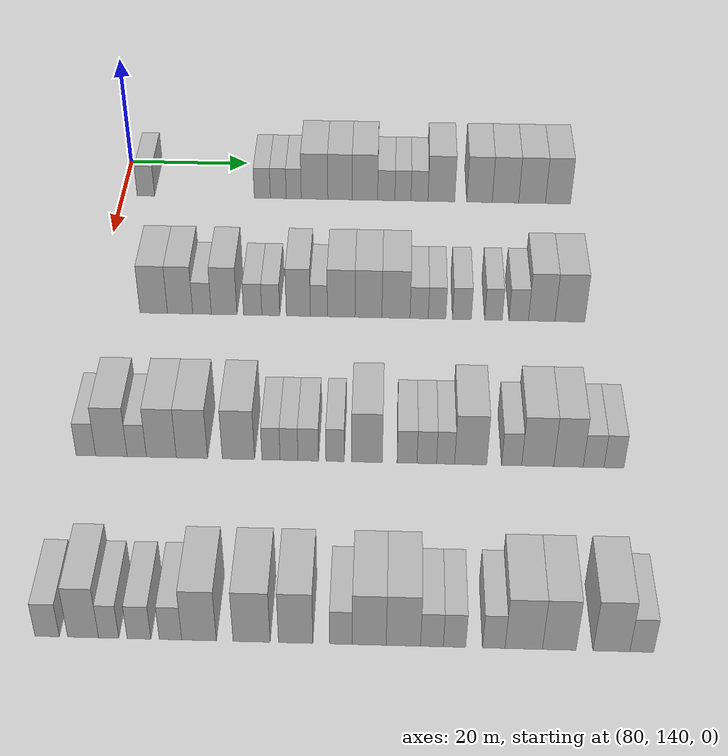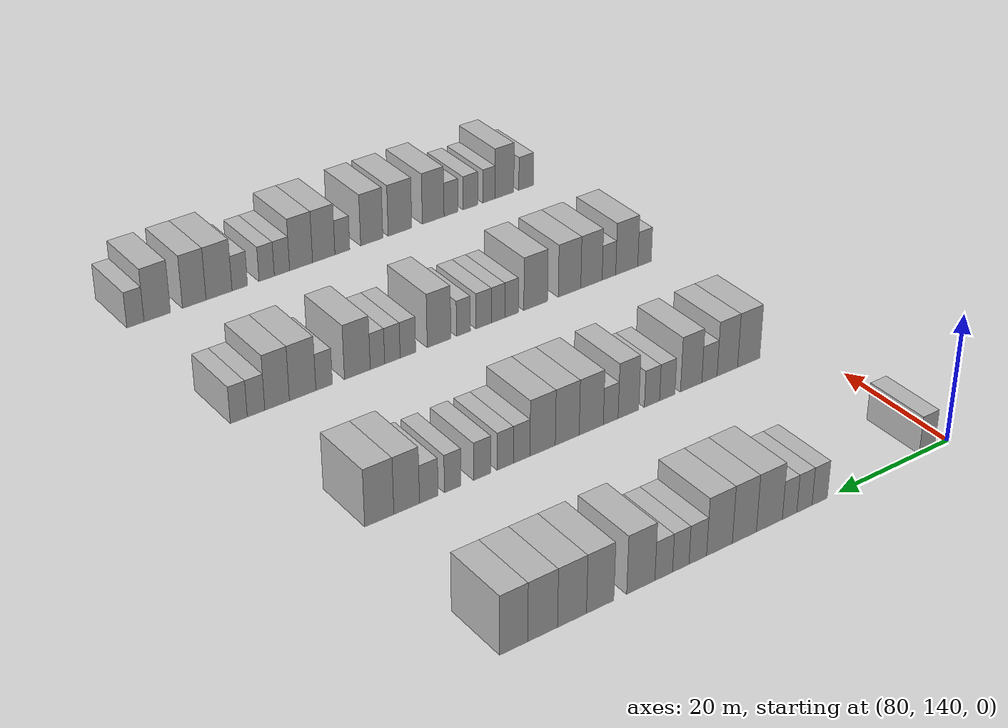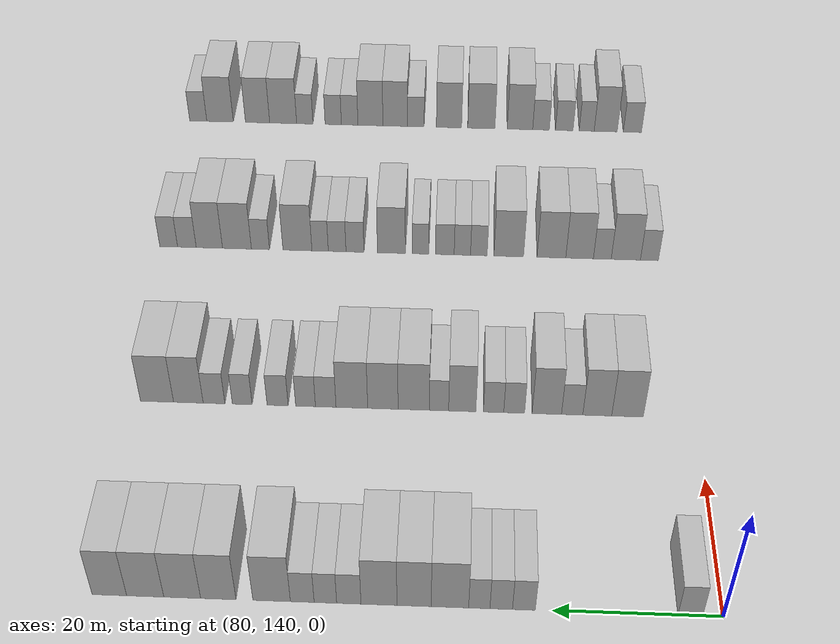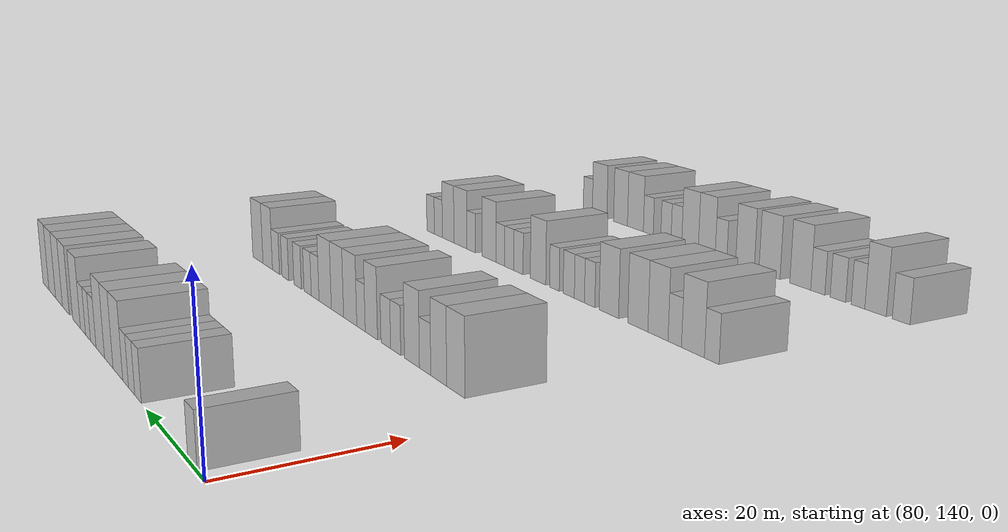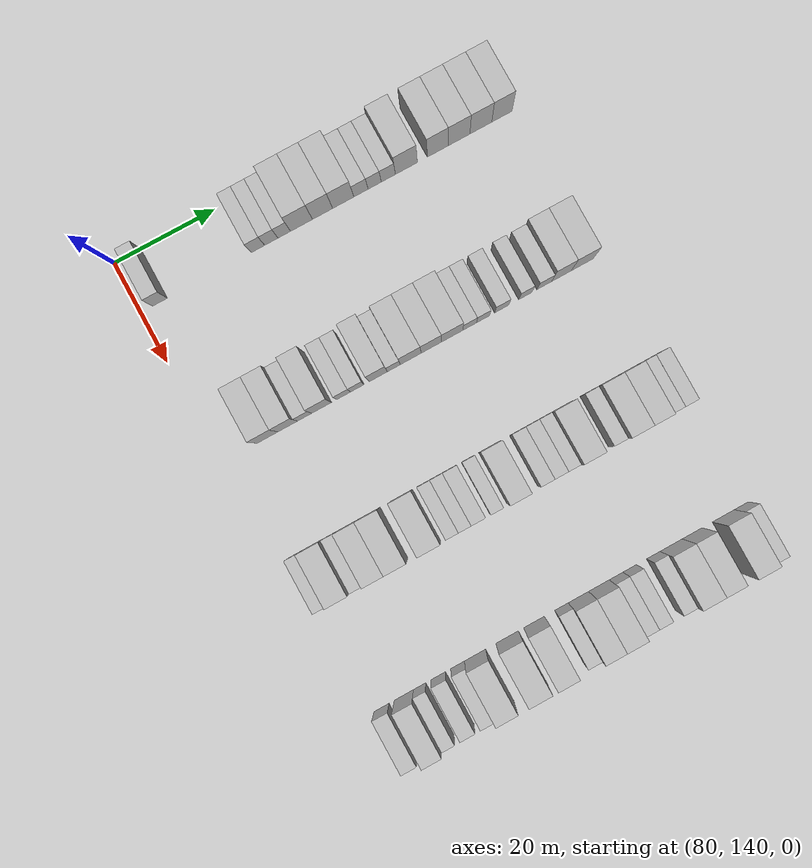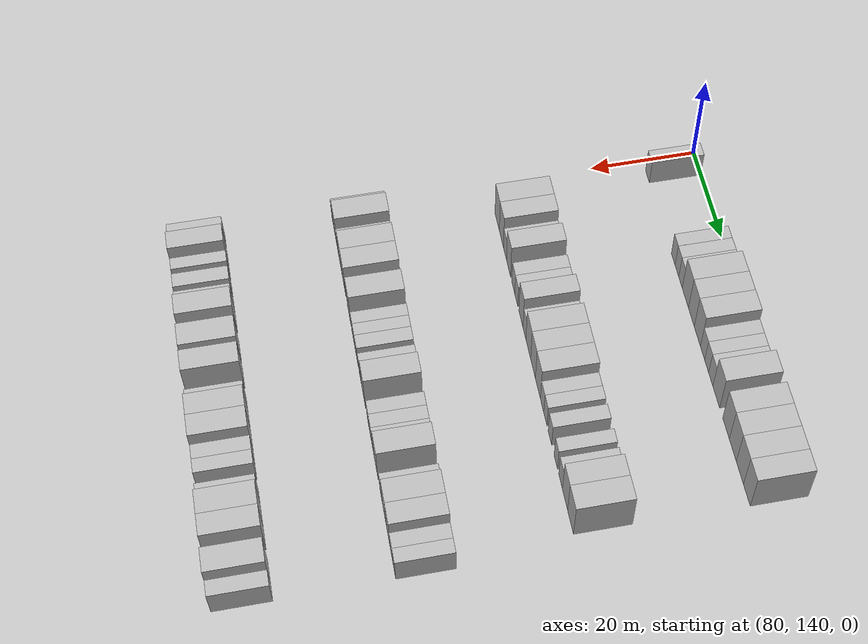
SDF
<sdf version="1.6">
 <world name="default">
  <model name="building_602">
   <static>1</static>
   <pose>85.0000 143.8813 0 0.000000 0.000000 0.000000</pose>
   <link name="link">
    <pose>0 0 3.00 0 0 0</pose>
    <collision name="collision"><geometry><box><size>10.0000 2.9100 6.0000</size></box></geometry></collision>
    <visual name="visual">
     <cast_shadows>0</cast_shadows>
     <geometry><box><size>10.0000 2.9100 6.0000</size></box></geometry>
     <material>
      <script>
       <uri>model://HANNAS_wall/materials/scripts</uri>
       <uri>model://HANNAS_wall/materials/textures</uri>
       <name>vrc/HANNAS_wall</name>
      </script>
     </material>
    </visual>
   </link>
  </model>
  <model name="building_603">
   <static>1</static>
   <pose>85.0000 163.3532 0 0.000000 0.000000 0.000000</pose>
   <link name="link">
    <pose>0 0 3.00 0 0 0</pose>
    <collision name="collision"><geometry><box><size>10.0000 2.6780 6.0000</size></box></geometry></collision>
    <visual name="visual">
     <cast_shadows>0</cast_shadows>
     <geometry><box><size>10.0000 2.6780 6.0000</size></box></geometry>
     <material>
      <script>
       <uri>model://HANNAS_wall/materials/scripts</uri>
       <uri>model://HANNAS_wall/materials/textures</uri>
       <name>vrc/HANNAS_wall</name>
      </script>
     </material>
    </visual>
   </link>
  </model>
  <model name="building_604">
   <static>1</static>
   <pose>85.0000 166.0156 0 0.000000 0.000000 0.000000</pose>
   <link name="link">
    <pose>0 0 3.00 0 0 0</pose>
    <collision name="collision"><geometry><box><size>10.0000 2.6466 6.0000</size></box></geometry></collision>
    <visual name="visual">
     <cast_shadows>0</cast_shadows>
     <geometry><box><size>10.0000 2.6466 6.0000</size></box></geometry>
     <material>
      <script>
       <uri>model://HANNAS_wall/materials/scripts</uri>
       <uri>model://HANNAS_wall/materials/textures</uri>
       <name>vrc/HANNAS_wall</name>
      </script>
     </material>
    </visual>
   </link>
  </model>
  <model name="building_605">
   <static>1</static>
   <pose>85.0000 168.5901 0 0.000000 0.000000 0.000000</pose>
   <link name="link">
    <pose>0 0 3.00 0 0 0</pose>
    <collision name="collision"><geometry><box><size>10.0000 2.5026 6.0000</size></box></geometry></collision>
    <visual name="visual">
     <cast_shadows>0</cast_shadows>
     <geometry><box><size>10.0000 2.5026 6.0000</size></box></geometry>
     <material>
      <script>
       <uri>model://HANNAS_wall/materials/scripts</uri>
       <uri>model://HANNAS_wall/materials/textures</uri>
       <name>vrc/HANNAS_wall</name>
      </script>
     </material>
    </visual>
   </link>
  </model>
  <model name="building_606">
   <static>1</static>
   <pose>85.0000 172.0464 0 0.000000 0.000000 0.000000</pose>
   <link name="link">
    <pose>0 0 4.50 0 0 0</pose>
    <collision name="collision"><geometry><box><size>10.0000 4.4101 9.0000</size></box></geometry></collision>
    <visual name="visual">
     <cast_shadows>0</cast_shadows>
     <geometry><box><size>10.0000 4.4101 9.0000</size></box></geometry>
     <material>
      <script>
       <uri>model://HANNAS_wall/materials/scripts</uri>
       <uri>model://HANNAS_wall/materials/textures</uri>
       <name>vrc/HANNAS_wall</name>
      </script>
     </material>
    </visual>
   </link>
  </model>
  <model name="building_607">
   <static>1</static>
   <pose>85.0000 176.2685 0 0.000000 0.000000 0.000000</pose>
   <link name="link">
    <pose>0 0 4.50 0 0 0</pose>
    <collision name="collision"><geometry><box><size>10.0000 4.0340 9.0000</size></box></geometry></collision>
    <visual name="visual">
     <cast_shadows>0</cast_shadows>
     <geometry><box><size>10.0000 4.0340 9.0000</size></box></geometry>
     <material>
      <script>
       <uri>model://HANNAS_wall/materials/scripts</uri>
       <uri>model://HANNAS_wall/materials/textures</uri>
       <name>vrc/HANNAS_wall</name>
      </script>
     </material>
    </visual>
   </link>
  </model>
  <model name="building_608">
   <static>1</static>
   <pose>85.0000 180.4077 0 0.000000 0.000000 0.000000</pose>
   <link name="link">
    <pose>0 0 4.50 0 0 0</pose>
    <collision name="collision"><geometry><box><size>10.0000 4.2444 9.0000</size></box></geometry></collision>
    <visual name="visual">
     <cast_shadows>0</cast_shadows>
     <geometry><box><size>10.0000 4.2444 9.0000</size></box></geometry>
     <material>
      <script>
       <uri>model://HANNAS_wall/materials/scripts</uri>
       <uri>model://HANNAS_wall/materials/textures</uri>
       <name>vrc/HANNAS_wall</name>
      </script>
     </material>
    </visual>
   </link>
  </model>
  <model name="building_609">
   <static>1</static>
   <pose>85.0000 183.9645 0 0.000000 0.000000 0.000000</pose>
   <link name="link">
    <pose>0 0 3.00 0 0 0</pose>
    <collision name="collision"><geometry><box><size>10.0000 2.8692 6.0000</size></box></geometry></collision>
    <visual name="visual">
     <cast_shadows>0</cast_shadows>
     <geometry><box><size>10.0000 2.8692 6.0000</size></box></geometry>
     <material>
      <script>
       <uri>model://HANNAS_wall/materials/scripts</uri>
       <uri>model://HANNAS_wall/materials/textures</uri>
       <name>vrc/HANNAS_wall</name>
      </script>
     </material>
    </visual>
   </link>
  </model>
  <model name="building_610">
   <static>1</static>
   <pose>85.0000 186.7301 0 0.000000 0.000000 0.000000</pose>
   <link name="link">
    <pose>0 0 3.00 0 0 0</pose>
    <collision name="collision"><geometry><box><size>10.0000 2.6620 6.0000</size></box></geometry></collision>
    <visual name="visual">
     <cast_shadows>0</cast_shadows>
     <geometry><box><size>10.0000 2.6620 6.0000</size></box></geometry>
     <material>
      <script>
       <uri>model://HANNAS_wall/materials/scripts</uri>
       <uri>model://HANNAS_wall/materials/textures</uri>
       <name>vrc/HANNAS_wall</name>
      </script>
     </material>
    </visual>
   </link>
  </model>
  <model name="building_611">
   <static>1</static>
   <pose>85.0000 189.4691 0 0.000000 0.000000 0.000000</pose>
   <link name="link">
    <pose>0 0 3.00 0 0 0</pose>
    <collision name="collision"><geometry><box><size>10.0000 2.8160 6.0000</size></box></geometry></collision>
    <visual name="visual">
     <cast_shadows>0</cast_shadows>
     <geometry><box><size>10.0000 2.8160 6.0000</size></box></geometry>
     <material>
      <script>
       <uri>model://HANNAS_wall/materials/scripts</uri>
       <uri>model://HANNAS_wall/materials/textures</uri>
       <name>vrc/HANNAS_wall</name>
      </script>
     </material>
    </visual>
   </link>
  </model>
  <model name="building_612">
   <static>1</static>
   <pose>85.0000 193.0989 0 0.000000 0.000000 0.000000</pose>
   <link name="link">
    <pose>0 0 4.50 0 0 0</pose>
    <collision name="collision"><geometry><box><size>10.0000 4.4435 9.0000</size></box></geometry></collision>
    <visual name="visual">
     <cast_shadows>0</cast_shadows>
     <geometry><box><size>10.0000 4.4435 9.0000</size></box></geometry>
     <material>
      <script>
       <uri>model://HANNAS_wall/materials/scripts</uri>
       <uri>model://HANNAS_wall/materials/textures</uri>
       <name>vrc/HANNAS_wall</name>
      </script>
     </material>
    </visual>
   </link>
  </model>
  <model name="building_613">
   <static>1</static>
   <pose>85.0000 199.4242 0 0.000000 0.000000 0.000000</pose>
   <link name="link">
    <pose>0 0 4.50 0 0 0</pose>
    <collision name="collision"><geometry><box><size>10.0000 4.2070 9.0000</size></box></geometry></collision>
    <visual name="visual">
     <cast_shadows>0</cast_shadows>
     <geometry><box><size>10.0000 4.2070 9.0000</size></box></geometry>
     <material>
      <script>
       <uri>model://HANNAS_wall/materials/scripts</uri>
       <uri>model://HANNAS_wall/materials/textures</uri>
       <name>vrc/HANNAS_wall</name>
      </script>
     </material>
    </visual>
   </link>
  </model>
  <model name="building_614">
   <static>1</static>
   <pose>85.0000 203.7203 0 0.000000 0.000000 0.000000</pose>
   <link name="link">
    <pose>0 0 4.50 0 0 0</pose>
    <collision name="collision"><geometry><box><size>10.0000 4.3853 9.0000</size></box></geometry></collision>
    <visual name="visual">
     <cast_shadows>0</cast_shadows>
     <geometry><box><size>10.0000 4.3853 9.0000</size></box></geometry>
     <material>
      <script>
       <uri>model://HANNAS_wall/materials/scripts</uri>
       <uri>model://HANNAS_wall/materials/textures</uri>
       <name>vrc/HANNAS_wall</name>
      </script>
     </material>
    </visual>
   </link>
  </model>
  <model name="building_615">
   <static>1</static>
   <pose>85.0000 208.1256 0 0.000000 0.000000 0.000000</pose>
   <link name="link">
    <pose>0 0 4.50 0 0 0</pose>
    <collision name="collision"><geometry><box><size>10.0000 4.4253 9.0000</size></box></geometry></collision>
    <visual name="visual">
     <cast_shadows>0</cast_shadows>
     <geometry><box><size>10.0000 4.4253 9.0000</size></box></geometry>
     <material>
      <script>
       <uri>model://HANNAS_wall/materials/scripts</uri>
       <uri>model://HANNAS_wall/materials/textures</uri>
       <name>vrc/HANNAS_wall</name>
      </script>
     </material>
    </visual>
   </link>
  </model>
  <model name="building_616">
   <static>1</static>
   <pose>85.0000 212.4004 0 0.000000 0.000000 0.000000</pose>
   <link name="link">
    <pose>0 0 4.50 0 0 0</pose>
    <collision name="collision"><geometry><box><size>10.0000 4.1244 9.0000</size></box></geometry></collision>
    <visual name="visual">
     <cast_shadows>0</cast_shadows>
     <geometry><box><size>10.0000 4.1244 9.0000</size></box></geometry>
     <material>
      <script>
       <uri>model://HANNAS_wall/materials/scripts</uri>
       <uri>model://HANNAS_wall/materials/textures</uri>
       <name>vrc/HANNAS_wall</name>
      </script>
     </material>
    </visual>
   </link>
  </model>
  <model name="building_820">
   <static>1</static>
   <pose>115.0000 149.1831 0 0.000000 0.000000 0.000000</pose>
   <link name="link">
    <pose>0 0 4.50 0 0 0</pose>
    <collision name="collision"><geometry><box><size>10.0000 4.1618 9.0000</size></box></geometry></collision>
    <visual name="visual">
     <cast_shadows>0</cast_shadows>
     <geometry><box><size>10.0000 4.1618 9.0000</size></box></geometry>
     <material>
      <script>
       <uri>model://HANNAS_wall/materials/scripts</uri>
       <uri>model://HANNAS_wall/materials/textures</uri>
       <name>vrc/HANNAS_wall</name>
      </script>
     </material>
    </visual>
   </link>
  </model>
  <model name="building_821">
   <static>1</static>
   <pose>115.0000 153.1720 0 0.000000 0.000000 0.000000</pose>
   <link name="link">
    <pose>0 0 4.50 0 0 0</pose>
    <collision name="collision"><geometry><box><size>10.0000 3.8162 9.0000</size></box></geometry></collision>
    <visual name="visual">
     <cast_shadows>0</cast_shadows>
     <geometry><box><size>10.0000 3.8162 9.0000</size></box></geometry>
     <material>
      <script>
       <uri>model://HANNAS_wall/materials/scripts</uri>
       <uri>model://HANNAS_wall/materials/textures</uri>
       <name>vrc/HANNAS_wall</name>
      </script>
     </material>
    </visual>
   </link>
  </model>
  <model name="building_822">
   <static>1</static>
   <pose>115.0000 156.4892 0 0.000000 0.000000 0.000000</pose>
   <link name="link">
    <pose>0 0 3.00 0 0 0</pose>
    <collision name="collision"><geometry><box><size>10.0000 2.8182 6.0000</size></box></geometry></collision>
    <visual name="visual">
     <cast_shadows>0</cast_shadows>
     <geometry><box><size>10.0000 2.8182 6.0000</size></box></geometry>
     <material>
      <script>
       <uri>model://HANNAS_wall/materials/scripts</uri>
       <uri>model://HANNAS_wall/materials/textures</uri>
       <name>vrc/HANNAS_wall</name>
      </script>
     </material>
    </visual>
   </link>
  </model>
  <model name="building_823">
   <static>1</static>
   <pose>115.0000 159.8409 0 0.000000 0.000000 0.000000</pose>
   <link name="link">
    <pose>0 0 4.50 0 0 0</pose>
    <collision name="collision"><geometry><box><size>10.0000 3.8851 9.0000</size></box></geometry></collision>
    <visual name="visual">
     <cast_shadows>0</cast_shadows>
     <geometry><box><size>10.0000 3.8851 9.0000</size></box></geometry>
     <material>
      <script>
       <uri>model://HANNAS_wall/materials/scripts</uri>
       <uri>model://HANNAS_wall/materials/textures</uri>
       <name>vrc/HANNAS_wall</name>
      </script>
     </material>
    </visual>
   </link>
  </model>
  <model name="building_824">
   <static>1</static>
   <pose>115.0000 164.1628 0 0.000000 0.000000 0.000000</pose>
   <link name="link">
    <pose>0 0 3.00 0 0 0</pose>
    <collision name="collision"><geometry><box><size>10.0000 2.7585 6.0000</size></box></geometry></collision>
    <visual name="visual">
     <cast_shadows>0</cast_shadows>
     <geometry><box><size>10.0000 2.7585 6.0000</size></box></geometry>
     <material>
      <script>
       <uri>model://HANNAS_wall/materials/scripts</uri>
       <uri>model://HANNAS_wall/materials/textures</uri>
       <name>vrc/HANNAS_wall</name>
      </script>
     </material>
    </visual>
   </link>
  </model>
  <model name="building_825">
   <static>1</static>
   <pose>115.0000 166.8924 0 0.000000 0.000000 0.000000</pose>
   <link name="link">
    <pose>0 0 3.00 0 0 0</pose>
    <collision name="collision"><geometry><box><size>10.0000 2.7008 6.0000</size></box></geometry></collision>
    <visual name="visual">
     <cast_shadows>0</cast_shadows>
     <geometry><box><size>10.0000 2.7008 6.0000</size></box></geometry>
     <material>
      <script>
       <uri>model://HANNAS_wall/materials/scripts</uri>
       <uri>model://HANNAS_wall/materials/textures</uri>
       <name>vrc/HANNAS_wall</name>
      </script>
     </material>
    </visual>
   </link>
  </model>
  <model name="building_826">
   <static>1</static>
   <pose>115.0000 171.0539 0 0.000000 0.000000 0.000000</pose>
   <link name="link">
    <pose>0 0 4.50 0 0 0</pose>
    <collision name="collision"><geometry><box><size>10.0000 3.6221 9.0000</size></box></geometry></collision>
    <visual name="visual">
     <cast_shadows>0</cast_shadows>
     <geometry><box><size>10.0000 3.6221 9.0000</size></box></geometry>
     <material>
      <script>
       <uri>model://HANNAS_wall/materials/scripts</uri>
       <uri>model://HANNAS_wall/materials/textures</uri>
       <name>vrc/HANNAS_wall</name>
      </script>
     </material>
    </visual>
   </link>
  </model>
  <model name="building_827">
   <static>1</static>
   <pose>115.0000 174.1461 0 0.000000 0.000000 0.000000</pose>
   <link name="link">
    <pose>0 0 3.00 0 0 0</pose>
    <collision name="collision"><geometry><box><size>10.0000 2.5623 6.0000</size></box></geometry></collision>
    <visual name="visual">
     <cast_shadows>0</cast_shadows>
     <geometry><box><size>10.0000 2.5623 6.0000</size></box></geometry>
     <material>
      <script>
       <uri>model://HANNAS_wall/materials/scripts</uri>
       <uri>model://HANNAS_wall/materials/textures</uri>
       <name>vrc/HANNAS_wall</name>
      </script>
     </material>
    </visual>
   </link>
  </model>
  <model name="building_828">
   <static>1</static>
   <pose>115.0000 177.5042 0 0.000000 0.000000 0.000000</pose>
   <link name="link">
    <pose>0 0 4.50 0 0 0</pose>
    <collision name="collision"><geometry><box><size>10.0000 4.1539 9.0000</size></box></geometry></collision>
    <visual name="visual">
     <cast_shadows>0</cast_shadows>
     <geometry><box><size>10.0000 4.1539 9.0000</size></box></geometry>
     <material>
      <script>
       <uri>model://HANNAS_wall/materials/scripts</uri>
       <uri>model://HANNAS_wall/materials/textures</uri>
       <name>vrc/HANNAS_wall</name>
      </script>
     </material>
    </visual>
   </link>
  </model>
  <model name="building_829">
   <static>1</static>
   <pose>115.0000 181.6020 0 0.000000 0.000000 0.000000</pose>
   <link name="link">
    <pose>0 0 4.50 0 0 0</pose>
    <collision name="collision"><geometry><box><size>10.0000 4.0418 9.0000</size></box></geometry></collision>
    <visual name="visual">
     <cast_shadows>0</cast_shadows>
     <geometry><box><size>10.0000 4.0418 9.0000</size></box></geometry>
     <material>
      <script>
       <uri>model://HANNAS_wall/materials/scripts</uri>
       <uri>model://HANNAS_wall/materials/textures</uri>
       <name>vrc/HANNAS_wall</name>
      </script>
     </material>
    </visual>
   </link>
  </model>
  <model name="building_830">
   <static>1</static>
   <pose>115.0000 185.7370 0 0.000000 0.000000 0.000000</pose>
   <link name="link">
    <pose>0 0 4.50 0 0 0</pose>
    <collision name="collision"><geometry><box><size>10.0000 4.2282 9.0000</size></box></geometry></collision>
    <visual name="visual">
     <cast_shadows>0</cast_shadows>
     <geometry><box><size>10.0000 4.2282 9.0000</size></box></geometry>
     <material>
      <script>
       <uri>model://HANNAS_wall/materials/scripts</uri>
       <uri>model://HANNAS_wall/materials/textures</uri>
       <name>vrc/HANNAS_wall</name>
      </script>
     </material>
    </visual>
   </link>
  </model>
  <model name="building_831">
   <static>1</static>
   <pose>115.0000 189.2227 0 0.000000 0.000000 0.000000</pose>
   <link name="link">
    <pose>0 0 3.00 0 0 0</pose>
    <collision name="collision"><geometry><box><size>10.0000 2.7432 6.0000</size></box></geometry></collision>
    <visual name="visual">
     <cast_shadows>0</cast_shadows>
     <geometry><box><size>10.0000 2.7432 6.0000</size></box></geometry>
     <material>
      <script>
       <uri>model://HANNAS_wall/materials/scripts</uri>
       <uri>model://HANNAS_wall/materials/textures</uri>
       <name>vrc/HANNAS_wall</name>
      </script>
     </material>
    </visual>
   </link>
  </model>
  <model name="building_832">
   <static>1</static>
   <pose>115.0000 191.9150 0 0.000000 0.000000 0.000000</pose>
   <link name="link">
    <pose>0 0 3.00 0 0 0</pose>
    <collision name="collision"><geometry><box><size>10.0000 2.6414 6.0000</size></box></geometry></collision>
    <visual name="visual">
     <cast_shadows>0</cast_shadows>
     <geometry><box><size>10.0000 2.6414 6.0000</size></box></geometry>
     <material>
      <script>
       <uri>model://HANNAS_wall/materials/scripts</uri>
       <uri>model://HANNAS_wall/materials/textures</uri>
       <name>vrc/HANNAS_wall</name>
      </script>
     </material>
    </visual>
   </link>
  </model>
  <model name="building_833">
   <static>1</static>
   <pose>115.0000 195.6476 0 0.000000 0.000000 0.000000</pose>
   <link name="link">
    <pose>0 0 3.00 0 0 0</pose>
    <collision name="collision"><geometry><box><size>10.0000 2.8238 6.0000</size></box></geometry></collision>
    <visual name="visual">
     <cast_shadows>0</cast_shadows>
     <geometry><box><size>10.0000 2.8238 6.0000</size></box></geometry>
     <material>
      <script>
       <uri>model://HANNAS_wall/materials/scripts</uri>
       <uri>model://HANNAS_wall/materials/textures</uri>
       <name>vrc/HANNAS_wall</name>
      </script>
     </material>
    </visual>
   </link>
  </model>
  <model name="building_834">
   <static>1</static>
   <pose>115.0000 200.3842 0 0.000000 0.000000 0.000000</pose>
   <link name="link">
    <pose>0 0 3.00 0 0 0</pose>
    <collision name="collision"><geometry><box><size>10.0000 2.6494 6.0000</size></box></geometry></collision>
    <visual name="visual">
     <cast_shadows>0</cast_shadows>
     <geometry><box><size>10.0000 2.6494 6.0000</size></box></geometry>
     <material>
      <script>
       <uri>model://HANNAS_wall/materials/scripts</uri>
       <uri>model://HANNAS_wall/materials/textures</uri>
       <name>vrc/HANNAS_wall</name>
      </script>
     </material>
    </visual>
   </link>
  </model>
  <model name="building_835">
   <static>1</static>
   <pose>115.0000 204.1663 0 0.000000 0.000000 0.000000</pose>
   <link name="link">
    <pose>0 0 3.00 0 0 0</pose>
    <collision name="collision"><geometry><box><size>10.0000 2.9148 6.0000</size></box></geometry></collision>
    <visual name="visual">
     <cast_shadows>0</cast_shadows>
     <geometry><box><size>10.0000 2.9148 6.0000</size></box></geometry>
     <material>
      <script>
       <uri>model://HANNAS_wall/materials/scripts</uri>
       <uri>model://HANNAS_wall/materials/textures</uri>
       <name>vrc/HANNAS_wall</name>
      </script>
     </material>
    </visual>
   </link>
  </model>
  <model name="building_836">
   <static>1</static>
   <pose>115.0000 207.6137 0 0.000000 0.000000 0.000000</pose>
   <link name="link">
    <pose>0 0 4.50 0 0 0</pose>
    <collision name="collision"><geometry><box><size>10.0000 3.9800 9.0000</size></box></geometry></collision>
    <visual name="visual">
     <cast_shadows>0</cast_shadows>
     <geometry><box><size>10.0000 3.9800 9.0000</size></box></geometry>
     <material>
      <script>
       <uri>model://HANNAS_wall/materials/scripts</uri>
       <uri>model://HANNAS_wall/materials/textures</uri>
       <name>vrc/HANNAS_wall</name>
      </script>
     </material>
    </visual>
   </link>
  </model>
  <model name="building_837">
   <static>1</static>
   <pose>115.0000 211.8282 0 0.000000 0.000000 0.000000</pose>
   <link name="link">
    <pose>0 0 4.50 0 0 0</pose>
    <collision name="collision"><geometry><box><size>10.0000 4.4492 9.0000</size></box></geometry></collision>
    <visual name="visual">
     <cast_shadows>0</cast_shadows>
     <geometry><box><size>10.0000 4.4492 9.0000</size></box></geometry>
     <material>
      <script>
       <uri>model://HANNAS_wall/materials/scripts</uri>
       <uri>model://HANNAS_wall/materials/textures</uri>
       <name>vrc/HANNAS_wall</name>
      </script>
     </material>
    </visual>
   </link>
  </model>
  <model name="building_1043">
   <static>1</static>
   <pose>145.0000 143.9235 0 0.000000 0.000000 0.000000</pose>
   <link name="link">
    <pose>0 0 3.00 0 0 0</pose>
    <collision name="collision"><geometry><box><size>10.0000 2.6432 6.0000</size></box></geometry></collision>
    <visual name="visual">
     <cast_shadows>0</cast_shadows>
     <geometry><box><size>10.0000 2.6432 6.0000</size></box></geometry>
     <material>
      <script>
       <uri>model://HANNAS_wall/materials/scripts</uri>
       <uri>model://HANNAS_wall/materials/textures</uri>
       <name>vrc/HANNAS_wall</name>
      </script>
     </material>
    </visual>
   </link>
  </model>
  <model name="building_1044">
   <static>1</static>
   <pose>145.0000 147.3894 0 0.000000 0.000000 0.000000</pose>
   <link name="link">
    <pose>0 0 4.50 0 0 0</pose>
    <collision name="collision"><geometry><box><size>10.0000 4.2887 9.0000</size></box></geometry></collision>
    <visual name="visual">
     <cast_shadows>0</cast_shadows>
     <geometry><box><size>10.0000 4.2887 9.0000</size></box></geometry>
     <material>
      <script>
       <uri>model://HANNAS_wall/materials/scripts</uri>
       <uri>model://HANNAS_wall/materials/textures</uri>
       <name>vrc/HANNAS_wall</name>
      </script>
     </material>
    </visual>
   </link>
  </model>
  <model name="building_1045">
   <static>1</static>
   <pose>145.0000 150.8413 0 0.000000 0.000000 0.000000</pose>
   <link name="link">
    <pose>0 0 3.00 0 0 0</pose>
    <collision name="collision"><geometry><box><size>10.0000 2.6151 6.0000</size></box></geometry></collision>
    <visual name="visual">
     <cast_shadows>0</cast_shadows>
     <geometry><box><size>10.0000 2.6151 6.0000</size></box></geometry>
     <material>
      <script>
       <uri>model://HANNAS_wall/materials/scripts</uri>
       <uri>model://HANNAS_wall/materials/textures</uri>
       <name>vrc/HANNAS_wall</name>
      </script>
     </material>
    </visual>
   </link>
  </model>
  <model name="building_1046">
   <static>1</static>
   <pose>145.0000 154.1838 0 0.000000 0.000000 0.000000</pose>
   <link name="link">
    <pose>0 0 4.50 0 0 0</pose>
    <collision name="collision"><geometry><box><size>10.0000 4.0697 9.0000</size></box></geometry></collision>
    <visual name="visual">
     <cast_shadows>0</cast_shadows>
     <geometry><box><size>10.0000 4.0697 9.0000</size></box></geometry>
     <material>
      <script>
       <uri>model://HANNAS_wall/materials/scripts</uri>
       <uri>model://HANNAS_wall/materials/textures</uri>
       <name>vrc/HANNAS_wall</name>
      </script>
     </material>
    </visual>
   </link>
  </model>
  <model name="building_1047">
   <static>1</static>
   <pose>145.0000 158.3363 0 0.000000 0.000000 0.000000</pose>
   <link name="link">
    <pose>0 0 4.50 0 0 0</pose>
    <collision name="collision"><geometry><box><size>10.0000 4.2354 9.0000</size></box></geometry></collision>
    <visual name="visual">
     <cast_shadows>0</cast_shadows>
     <geometry><box><size>10.0000 4.2354 9.0000</size></box></geometry>
     <material>
      <script>
       <uri>model://HANNAS_wall/materials/scripts</uri>
       <uri>model://HANNAS_wall/materials/textures</uri>
       <name>vrc/HANNAS_wall</name>
      </script>
     </material>
    </visual>
   </link>
  </model>
  <model name="building_1048">
   <static>1</static>
   <pose>145.0000 164.6399 0 0.000000 0.000000 0.000000</pose>
   <link name="link">
    <pose>0 0 4.50 0 0 0</pose>
    <collision name="collision"><geometry><box><size>10.0000 4.3719 9.0000</size></box></geometry></collision>
    <visual name="visual">
     <cast_shadows>0</cast_shadows>
     <geometry><box><size>10.0000 4.3719 9.0000</size></box></geometry>
     <material>
      <script>
       <uri>model://HANNAS_wall/materials/scripts</uri>
       <uri>model://HANNAS_wall/materials/textures</uri>
       <name>vrc/HANNAS_wall</name>
      </script>
     </material>
    </visual>
   </link>
  </model>
  <model name="building_1049">
   <static>1</static>
   <pose>145.0000 169.0537 0 0.000000 0.000000 0.000000</pose>
   <link name="link">
    <pose>0 0 3.00 0 0 0</pose>
    <collision name="collision"><geometry><box><size>10.0000 2.4556 6.0000</size></box></geometry></collision>
    <visual name="visual">
     <cast_shadows>0</cast_shadows>
     <geometry><box><size>10.0000 2.4556 6.0000</size></box></geometry>
     <material>
      <script>
       <uri>model://HANNAS_wall/materials/scripts</uri>
       <uri>model://HANNAS_wall/materials/textures</uri>
       <name>vrc/HANNAS_wall</name>
      </script>
     </material>
    </visual>
   </link>
  </model>
  <model name="building_1050">
   <static>1</static>
   <pose>145.0000 171.4916 0 0.000000 0.000000 0.000000</pose>
   <link name="link">
    <pose>0 0 3.00 0 0 0</pose>
    <collision name="collision"><geometry><box><size>10.0000 2.4203 6.0000</size></box></geometry></collision>
    <visual name="visual">
     <cast_shadows>0</cast_shadows>
     <geometry><box><size>10.0000 2.4203 6.0000</size></box></geometry>
     <material>
      <script>
       <uri>model://HANNAS_wall/materials/scripts</uri>
       <uri>model://HANNAS_wall/materials/textures</uri>
       <name>vrc/HANNAS_wall</name>
      </script>
     </material>
    </visual>
   </link>
  </model>
  <model name="building_1051">
   <static>1</static>
   <pose>145.0000 174.0862 0 0.000000 0.000000 0.000000</pose>
   <link name="link">
    <pose>0 0 3.00 0 0 0</pose>
    <collision name="collision"><geometry><box><size>10.0000 2.7689 6.0000</size></box></geometry></collision>
    <visual name="visual">
     <cast_shadows>0</cast_shadows>
     <geometry><box><size>10.0000 2.7689 6.0000</size></box></geometry>
     <material>
      <script>
       <uri>model://HANNAS_wall/materials/scripts</uri>
       <uri>model://HANNAS_wall/materials/textures</uri>
       <name>vrc/HANNAS_wall</name>
      </script>
     </material>
    </visual>
   </link>
  </model>
  <model name="building_1052">
   <static>1</static>
   <pose>145.0000 177.7015 0 0.000000 0.000000 0.000000</pose>
   <link name="link">
    <pose>0 0 3.00 0 0 0</pose>
    <collision name="collision"><geometry><box><size>10.0000 2.4616 6.0000</size></box></geometry></collision>
    <visual name="visual">
     <cast_shadows>0</cast_shadows>
     <geometry><box><size>10.0000 2.4616 6.0000</size></box></geometry>
     <material>
      <script>
       <uri>model://HANNAS_wall/materials/scripts</uri>
       <uri>model://HANNAS_wall/materials/textures</uri>
       <name>vrc/HANNAS_wall</name>
      </script>
     </material>
    </visual>
   </link>
  </model>
  <model name="building_1053">
   <static>1</static>
   <pose>145.0000 181.9979 0 0.000000 0.000000 0.000000</pose>
   <link name="link">
    <pose>0 0 4.50 0 0 0</pose>
    <collision name="collision"><geometry><box><size>10.0000 4.1312 9.0000</size></box></geometry></collision>
    <visual name="visual">
     <cast_shadows>0</cast_shadows>
     <geometry><box><size>10.0000 4.1312 9.0000</size></box></geometry>
     <material>
      <script>
       <uri>model://HANNAS_wall/materials/scripts</uri>
       <uri>model://HANNAS_wall/materials/textures</uri>
       <name>vrc/HANNAS_wall</name>
      </script>
     </material>
    </visual>
   </link>
  </model>
  <model name="building_1054">
   <static>1</static>
   <pose>145.0000 187.4004 0 0.000000 0.000000 0.000000</pose>
   <link name="link">
    <pose>0 0 3.00 0 0 0</pose>
    <collision name="collision"><geometry><box><size>10.0000 2.6737 6.0000</size></box></geometry></collision>
    <visual name="visual">
     <cast_shadows>0</cast_shadows>
     <geometry><box><size>10.0000 2.6737 6.0000</size></box></geometry>
     <material>
      <script>
       <uri>model://HANNAS_wall/materials/scripts</uri>
       <uri>model://HANNAS_wall/materials/textures</uri>
       <name>vrc/HANNAS_wall</name>
      </script>
     </material>
    </visual>
   </link>
  </model>
  <model name="building_1055">
   <static>1</static>
   <pose>145.0000 190.0532 0 0.000000 0.000000 0.000000</pose>
   <link name="link">
    <pose>0 0 3.00 0 0 0</pose>
    <collision name="collision"><geometry><box><size>10.0000 2.6319 6.0000</size></box></geometry></collision>
    <visual name="visual">
     <cast_shadows>0</cast_shadows>
     <geometry><box><size>10.0000 2.6319 6.0000</size></box></geometry>
     <material>
      <script>
       <uri>model://HANNAS_wall/materials/scripts</uri>
       <uri>model://HANNAS_wall/materials/textures</uri>
       <name>vrc/HANNAS_wall</name>
      </script>
     </material>
    </visual>
   </link>
  </model>
  <model name="building_1056">
   <static>1</static>
   <pose>145.0000 192.5876 0 0.000000 0.000000 0.000000</pose>
   <link name="link">
    <pose>0 0 3.00 0 0 0</pose>
    <collision name="collision"><geometry><box><size>10.0000 2.4370 6.0000</size></box></geometry></collision>
    <visual name="visual">
     <cast_shadows>0</cast_shadows>
     <geometry><box><size>10.0000 2.4370 6.0000</size></box></geometry>
     <material>
      <script>
       <uri>model://HANNAS_wall/materials/scripts</uri>
       <uri>model://HANNAS_wall/materials/textures</uri>
       <name>vrc/HANNAS_wall</name>
      </script>
     </material>
    </visual>
   </link>
  </model>
  <model name="building_1057">
   <static>1</static>
   <pose>145.0000 195.9631 0 0.000000 0.000000 0.000000</pose>
   <link name="link">
    <pose>0 0 4.50 0 0 0</pose>
    <collision name="collision"><geometry><box><size>10.0000 4.3140 9.0000</size></box></geometry></collision>
    <visual name="visual">
     <cast_shadows>0</cast_shadows>
     <geometry><box><size>10.0000 4.3140 9.0000</size></box></geometry>
     <material>
      <script>
       <uri>model://HANNAS_wall/materials/scripts</uri>
       <uri>model://HANNAS_wall/materials/textures</uri>
       <name>vrc/HANNAS_wall</name>
      </script>
     </material>
    </visual>
   </link>
  </model>
  <model name="building_1058">
   <static>1</static>
   <pose>145.0000 201.4721 0 0.000000 0.000000 0.000000</pose>
   <link name="link">
    <pose>0 0 3.00 0 0 0</pose>
    <collision name="collision"><geometry><box><size>10.0000 2.7039 6.0000</size></box></geometry></collision>
    <visual name="visual">
     <cast_shadows>0</cast_shadows>
     <geometry><box><size>10.0000 2.7039 6.0000</size></box></geometry>
     <material>
      <script>
       <uri>model://HANNAS_wall/materials/scripts</uri>
       <uri>model://HANNAS_wall/materials/textures</uri>
       <name>vrc/HANNAS_wall</name>
      </script>
     </material>
    </visual>
   </link>
  </model>
  <model name="building_1059">
   <static>1</static>
   <pose>145.0000 204.9788 0 0.000000 0.000000 0.000000</pose>
   <link name="link">
    <pose>0 0 4.50 0 0 0</pose>
    <collision name="collision"><geometry><box><size>10.0000 4.3095 9.0000</size></box></geometry></collision>
    <visual name="visual">
     <cast_shadows>0</cast_shadows>
     <geometry><box><size>10.0000 4.3095 9.0000</size></box></geometry>
     <material>
      <script>
       <uri>model://HANNAS_wall/materials/scripts</uri>
       <uri>model://HANNAS_wall/materials/textures</uri>
       <name>vrc/HANNAS_wall</name>
      </script>
     </material>
    </visual>
   </link>
  </model>
  <model name="building_1060">
   <static>1</static>
   <pose>145.0000 209.1024 0 0.000000 0.000000 0.000000</pose>
   <link name="link">
    <pose>0 0 4.50 0 0 0</pose>
    <collision name="collision"><geometry><box><size>10.0000 3.9378 9.0000</size></box></geometry></collision>
    <visual name="visual">
     <cast_shadows>0</cast_shadows>
     <geometry><box><size>10.0000 3.9378 9.0000</size></box></geometry>
     <material>
      <script>
       <uri>model://HANNAS_wall/materials/scripts</uri>
       <uri>model://HANNAS_wall/materials/textures</uri>
       <name>vrc/HANNAS_wall</name>
      </script>
     </material>
    </visual>
   </link>
  </model>
  <model name="building_1061">
   <static>1</static>
   <pose>145.0000 212.4610 0 0.000000 0.000000 0.000000</pose>
   <link name="link">
    <pose>0 0 3.00 0 0 0</pose>
    <collision name="collision"><geometry><box><size>10.0000 2.7795 6.0000</size></box></geometry></collision>
    <visual name="visual">
     <cast_shadows>0</cast_shadows>
     <geometry><box><size>10.0000 2.7795 6.0000</size></box></geometry>
     <material>
      <script>
       <uri>model://HANNAS_wall/materials/scripts</uri>
       <uri>model://HANNAS_wall/materials/textures</uri>
       <name>vrc/HANNAS_wall</name>
      </script>
     </material>
    </visual>
   </link>
  </model>
  <model name="building_1062">
   <static>1</static>
   <pose>145.0000 215.1839 0 0.000000 0.000000 0.000000</pose>
   <link name="link">
    <pose>0 0 3.00 0 0 0</pose>
    <collision name="collision"><geometry><box><size>10.0000 2.6661 6.0000</size></box></geometry></collision>
    <visual name="visual">
     <cast_shadows>0</cast_shadows>
     <geometry><box><size>10.0000 2.6661 6.0000</size></box></geometry>
     <material>
      <script>
       <uri>model://HANNAS_wall/materials/scripts</uri>
       <uri>model://HANNAS_wall/materials/textures</uri>
       <name>vrc/HANNAS_wall</name>
      </script>
     </material>
    </visual>
   </link>
  </model>
  <model name="building_1265">
   <static>1</static>
   <pose>175.0000 144.3099 0 0.000000 0.000000 0.000000</pose>
   <link name="link">
    <pose>0 0 3.00 0 0 0</pose>
    <collision name="collision"><geometry><box><size>10.0000 2.9334 6.0000</size></box></geometry></collision>
    <visual name="visual">
     <cast_shadows>0</cast_shadows>
     <geometry><box><size>10.0000 2.9334 6.0000</size></box></geometry>
     <material>
      <script>
       <uri>model://HANNAS_wall/materials/scripts</uri>
       <uri>model://HANNAS_wall/materials/textures</uri>
       <name>vrc/HANNAS_wall</name>
      </script>
     </material>
    </visual>
   </link>
  </model>
  <model name="building_1266">
   <static>1</static>
   <pose>175.0000 148.6376 0 0.000000 0.000000 0.000000</pose>
   <link name="link">
    <pose>0 0 4.50 0 0 0</pose>
    <collision name="collision"><geometry><box><size>10.0000 3.7220 9.0000</size></box></geometry></collision>
    <visual name="visual">
     <cast_shadows>0</cast_shadows>
     <geometry><box><size>10.0000 3.7220 9.0000</size></box></geometry>
     <material>
      <script>
       <uri>model://HANNAS_wall/materials/scripts</uri>
       <uri>model://HANNAS_wall/materials/textures</uri>
       <name>vrc/HANNAS_wall</name>
      </script>
     </material>
    </visual>
   </link>
  </model>
  <model name="building_1267">
   <static>1</static>
   <pose>175.0000 151.7171 0 0.000000 0.000000 0.000000</pose>
   <link name="link">
    <pose>0 0 3.00 0 0 0</pose>
    <collision name="collision"><geometry><box><size>10.0000 2.4370 6.0000</size></box></geometry></collision>
    <visual name="visual">
     <cast_shadows>0</cast_shadows>
     <geometry><box><size>10.0000 2.4370 6.0000</size></box></geometry>
     <material>
      <script>
       <uri>model://HANNAS_wall/materials/scripts</uri>
       <uri>model://HANNAS_wall/materials/textures</uri>
       <name>vrc/HANNAS_wall</name>
      </script>
     </material>
    </visual>
   </link>
  </model>
  <model name="building_1268">
   <static>1</static>
   <pose>175.0000 155.3624 0 0.000000 0.000000 0.000000</pose>
   <link name="link">
    <pose>0 0 3.00 0 0 0</pose>
    <collision name="collision"><geometry><box><size>10.0000 2.8537 6.0000</size></box></geometry></collision>
    <visual name="visual">
     <cast_shadows>0</cast_shadows>
     <geometry><box><size>10.0000 2.8537 6.0000</size></box></geometry>
     <material>
      <script>
       <uri>model://HANNAS_wall/materials/scripts</uri>
       <uri>model://HANNAS_wall/materials/textures</uri>
       <name>vrc/HANNAS_wall</name>
      </script>
     </material>
    </visual>
   </link>
  </model>
  <model name="building_1269">
   <static>1</static>
   <pose>175.0000 159.1391 0 0.000000 0.000000 0.000000</pose>
   <link name="link">
    <pose>0 0 3.00 0 0 0</pose>
    <collision name="collision"><geometry><box><size>10.0000 2.6995 6.0000</size></box></geometry></collision>
    <visual name="visual">
     <cast_shadows>0</cast_shadows>
     <geometry><box><size>10.0000 2.6995 6.0000</size></box></geometry>
     <material>
      <script>
       <uri>model://HANNAS_wall/materials/scripts</uri>
       <uri>model://HANNAS_wall/materials/textures</uri>
       <name>vrc/HANNAS_wall</name>
      </script>
     </material>
    </visual>
   </link>
  </model>
  <model name="building_1270">
   <static>1</static>
   <pose>175.0000 162.5646 0 0.000000 0.000000 0.000000</pose>
   <link name="link">
    <pose>0 0 4.50 0 0 0</pose>
    <collision name="collision"><geometry><box><size>10.0000 4.1517 9.0000</size></box></geometry></collision>
    <visual name="visual">
     <cast_shadows>0</cast_shadows>
     <geometry><box><size>10.0000 4.1517 9.0000</size></box></geometry>
     <material>
      <script>
       <uri>model://HANNAS_wall/materials/scripts</uri>
       <uri>model://HANNAS_wall/materials/textures</uri>
       <name>vrc/HANNAS_wall</name>
      </script>
     </material>
    </visual>
   </link>
  </model>
  <model name="building_1271">
   <static>1</static>
   <pose>175.0000 168.8557 0 0.000000 0.000000 0.000000</pose>
   <link name="link">
    <pose>0 0 4.50 0 0 0</pose>
    <collision name="collision"><geometry><box><size>10.0000 4.4305 9.0000</size></box></geometry></collision>
    <visual name="visual">
     <cast_shadows>0</cast_shadows>
     <geometry><box><size>10.0000 4.4305 9.0000</size></box></geometry>
     <material>
      <script>
       <uri>model://HANNAS_wall/materials/scripts</uri>
       <uri>model://HANNAS_wall/materials/textures</uri>
       <name>vrc/HANNAS_wall</name>
      </script>
     </material>
    </visual>
   </link>
  </model>
  <model name="building_1272">
   <static>1</static>
   <pose>175.0000 174.1243 0 0.000000 0.000000 0.000000</pose>
   <link name="link">
    <pose>0 0 4.50 0 0 0</pose>
    <collision name="collision"><geometry><box><size>10.0000 4.1067 9.0000</size></box></geometry></collision>
    <visual name="visual">
     <cast_shadows>0</cast_shadows>
     <geometry><box><size>10.0000 4.1067 9.0000</size></box></geometry>
     <material>
      <script>
       <uri>model://HANNAS_wall/materials/scripts</uri>
       <uri>model://HANNAS_wall/materials/textures</uri>
       <name>vrc/HANNAS_wall</name>
      </script>
     </material>
    </visual>
   </link>
  </model>
  <model name="building_1273">
   <static>1</static>
   <pose>175.0000 179.5272 0 0.000000 0.000000 0.000000</pose>
   <link name="link">
    <pose>0 0 3.00 0 0 0</pose>
    <collision name="collision"><geometry><box><size>10.0000 2.6990 6.0000</size></box></geometry></collision>
    <visual name="visual">
     <cast_shadows>0</cast_shadows>
     <geometry><box><size>10.0000 2.6990 6.0000</size></box></geometry>
     <material>
      <script>
       <uri>model://HANNAS_wall/materials/scripts</uri>
       <uri>model://HANNAS_wall/materials/textures</uri>
       <name>vrc/HANNAS_wall</name>
      </script>
     </material>
    </visual>
   </link>
  </model>
  <model name="building_1274">
   <static>1</static>
   <pose>175.0000 182.8925 0 0.000000 0.000000 0.000000</pose>
   <link name="link">
    <pose>0 0 4.50 0 0 0</pose>
    <collision name="collision"><geometry><box><size>10.0000 4.0317 9.0000</size></box></geometry></collision>
    <visual name="visual">
     <cast_shadows>0</cast_shadows>
     <geometry><box><size>10.0000 4.0317 9.0000</size></box></geometry>
     <material>
      <script>
       <uri>model://HANNAS_wall/materials/scripts</uri>
       <uri>model://HANNAS_wall/materials/textures</uri>
       <name>vrc/HANNAS_wall</name>
      </script>
     </material>
    </visual>
   </link>
  </model>
  <model name="building_1275">
   <static>1</static>
   <pose>175.0000 186.9555 0 0.000000 0.000000 0.000000</pose>
   <link name="link">
    <pose>0 0 4.50 0 0 0</pose>
    <collision name="collision"><geometry><box><size>10.0000 4.0943 9.0000</size></box></geometry></collision>
    <visual name="visual">
     <cast_shadows>0</cast_shadows>
     <geometry><box><size>10.0000 4.0943 9.0000</size></box></geometry>
     <material>
      <script>
       <uri>model://HANNAS_wall/materials/scripts</uri>
       <uri>model://HANNAS_wall/materials/textures</uri>
       <name>vrc/HANNAS_wall</name>
      </script>
     </material>
    </visual>
   </link>
  </model>
  <model name="building_1276">
   <static>1</static>
   <pose>175.0000 190.3574 0 0.000000 0.000000 0.000000</pose>
   <link name="link">
    <pose>0 0 3.00 0 0 0</pose>
    <collision name="collision"><geometry><box><size>10.0000 2.7096 6.0000</size></box></geometry></collision>
    <visual name="visual">
     <cast_shadows>0</cast_shadows>
     <geometry><box><size>10.0000 2.7096 6.0000</size></box></geometry>
     <material>
      <script>
       <uri>model://HANNAS_wall/materials/scripts</uri>
       <uri>model://HANNAS_wall/materials/textures</uri>
       <name>vrc/HANNAS_wall</name>
      </script>
     </material>
    </visual>
   </link>
  </model>
  <model name="building_1277">
   <static>1</static>
   <pose>175.0000 193.0461 0 0.000000 0.000000 0.000000</pose>
   <link name="link">
    <pose>0 0 3.00 0 0 0</pose>
    <collision name="collision"><geometry><box><size>10.0000 2.6678 6.0000</size></box></geometry></collision>
    <visual name="visual">
     <cast_shadows>0</cast_shadows>
     <geometry><box><size>10.0000 2.6678 6.0000</size></box></geometry>
     <material>
      <script>
       <uri>model://HANNAS_wall/materials/scripts</uri>
       <uri>model://HANNAS_wall/materials/textures</uri>
       <name>vrc/HANNAS_wall</name>
      </script>
     </material>
    </visual>
   </link>
  </model>
  <model name="building_1278">
   <static>1</static>
   <pose>175.0000 197.7142 0 0.000000 0.000000 0.000000</pose>
   <link name="link">
    <pose>0 0 3.00 0 0 0</pose>
    <collision name="collision"><geometry><box><size>10.0000 2.6685 6.0000</size></box></geometry></collision>
    <visual name="visual">
     <cast_shadows>0</cast_shadows>
     <geometry><box><size>10.0000 2.6685 6.0000</size></box></geometry>
     <material>
      <script>
       <uri>model://HANNAS_wall/materials/scripts</uri>
       <uri>model://HANNAS_wall/materials/textures</uri>
       <name>vrc/HANNAS_wall</name>
      </script>
     </material>
    </visual>
   </link>
  </model>
  <model name="building_1279">
   <static>1</static>
   <pose>175.0000 201.2657 0 0.000000 0.000000 0.000000</pose>
   <link name="link">
    <pose>0 0 4.50 0 0 0</pose>
    <collision name="collision"><geometry><box><size>10.0000 4.4346 9.0000</size></box></geometry></collision>
    <visual name="visual">
     <cast_shadows>0</cast_shadows>
     <geometry><box><size>10.0000 4.4346 9.0000</size></box></geometry>
     <material>
      <script>
       <uri>model://HANNAS_wall/materials/scripts</uri>
       <uri>model://HANNAS_wall/materials/textures</uri>
       <name>vrc/HANNAS_wall</name>
      </script>
     </material>
    </visual>
   </link>
  </model>
  <model name="building_1280">
   <static>1</static>
   <pose>175.0000 205.4730 0 0.000000 0.000000 0.000000</pose>
   <link name="link">
    <pose>0 0 4.50 0 0 0</pose>
    <collision name="collision"><geometry><box><size>10.0000 3.9800 9.0000</size></box></geometry></collision>
    <visual name="visual">
     <cast_shadows>0</cast_shadows>
     <geometry><box><size>10.0000 3.9800 9.0000</size></box></geometry>
     <material>
      <script>
       <uri>model://HANNAS_wall/materials/scripts</uri>
       <uri>model://HANNAS_wall/materials/textures</uri>
       <name>vrc/HANNAS_wall</name>
      </script>
     </material>
    </visual>
   </link>
  </model>
  <model name="building_1281">
   <static>1</static>
   <pose>175.0000 211.6480 0 0.000000 0.000000 0.000000</pose>
   <link name="link">
    <pose>0 0 4.50 0 0 0</pose>
    <collision name="collision"><geometry><box><size>10.0000 4.3700 9.0000</size></box></geometry></collision>
    <visual name="visual">
     <cast_shadows>0</cast_shadows>
     <geometry><box><size>10.0000 4.3700 9.0000</size></box></geometry>
     <material>
      <script>
       <uri>model://HANNAS_wall/materials/scripts</uri>
       <uri>model://HANNAS_wall/materials/textures</uri>
       <name>vrc/HANNAS_wall</name>
      </script>
     </material>
    </visual>
   </link>
  </model>
  <model name="building_1282">
   <static>1</static>
   <pose>175.0000 215.2409 0 0.000000 0.000000 0.000000</pose>
   <link name="link">
    <pose>0 0 3.00 0 0 0</pose>
    <collision name="collision"><geometry><box><size>10.0000 2.8157 6.0000</size></box></geometry></collision>
    <visual name="visual">
     <cast_shadows>0</cast_shadows>
     <geometry><box><size>10.0000 2.8157 6.0000</size></box></geometry>
     <material>
      <script>
       <uri>model://HANNAS_wall/materials/scripts</uri>
       <uri>model://HANNAS_wall/materials/textures</uri>
       <name>vrc/HANNAS_wall</name>
      </script>
     </material>
    </visual>
   </link>
  </model>
 </world>
</sdf>
